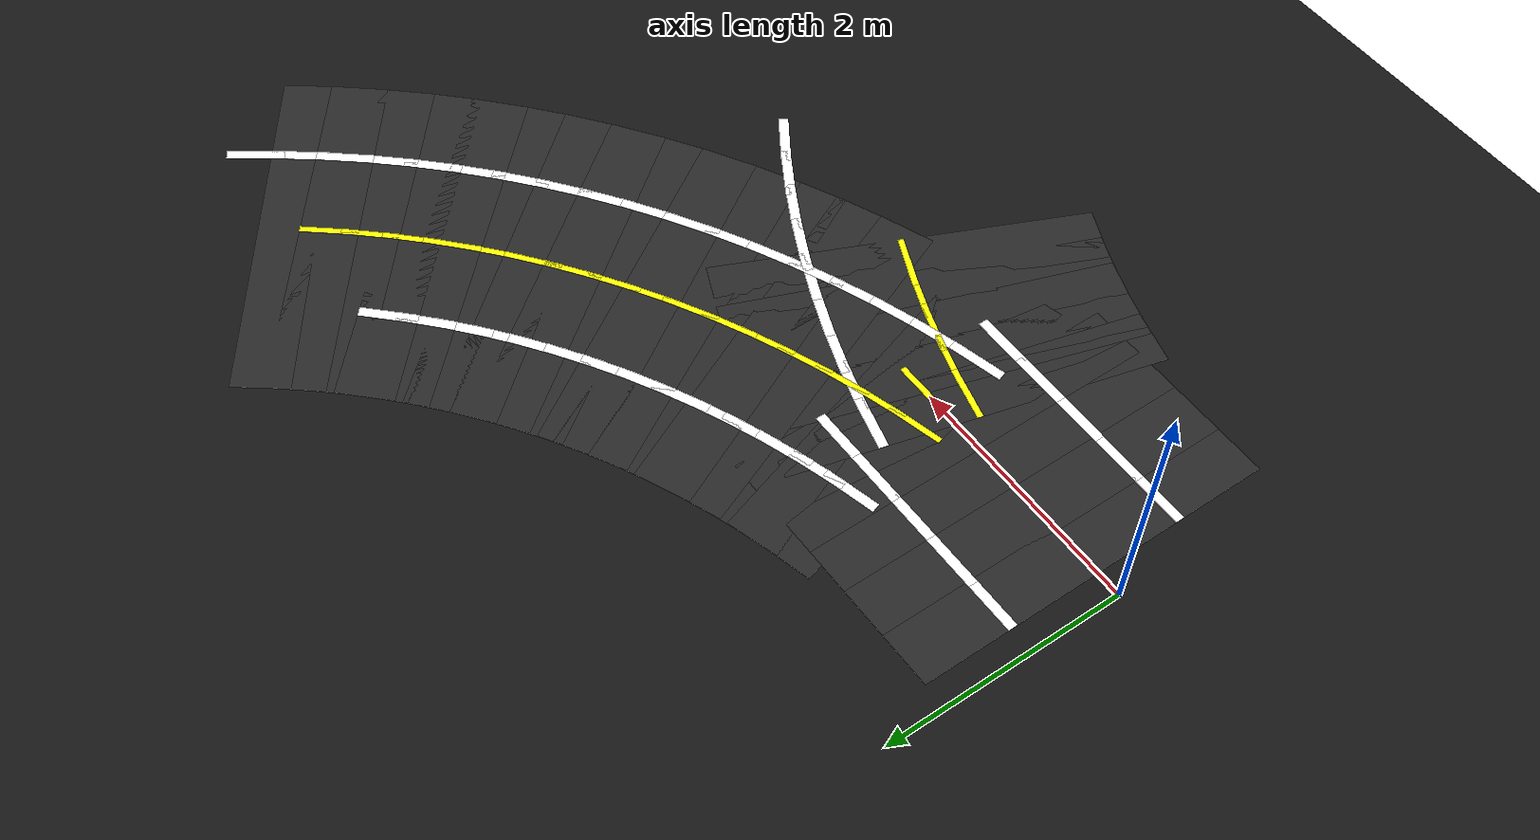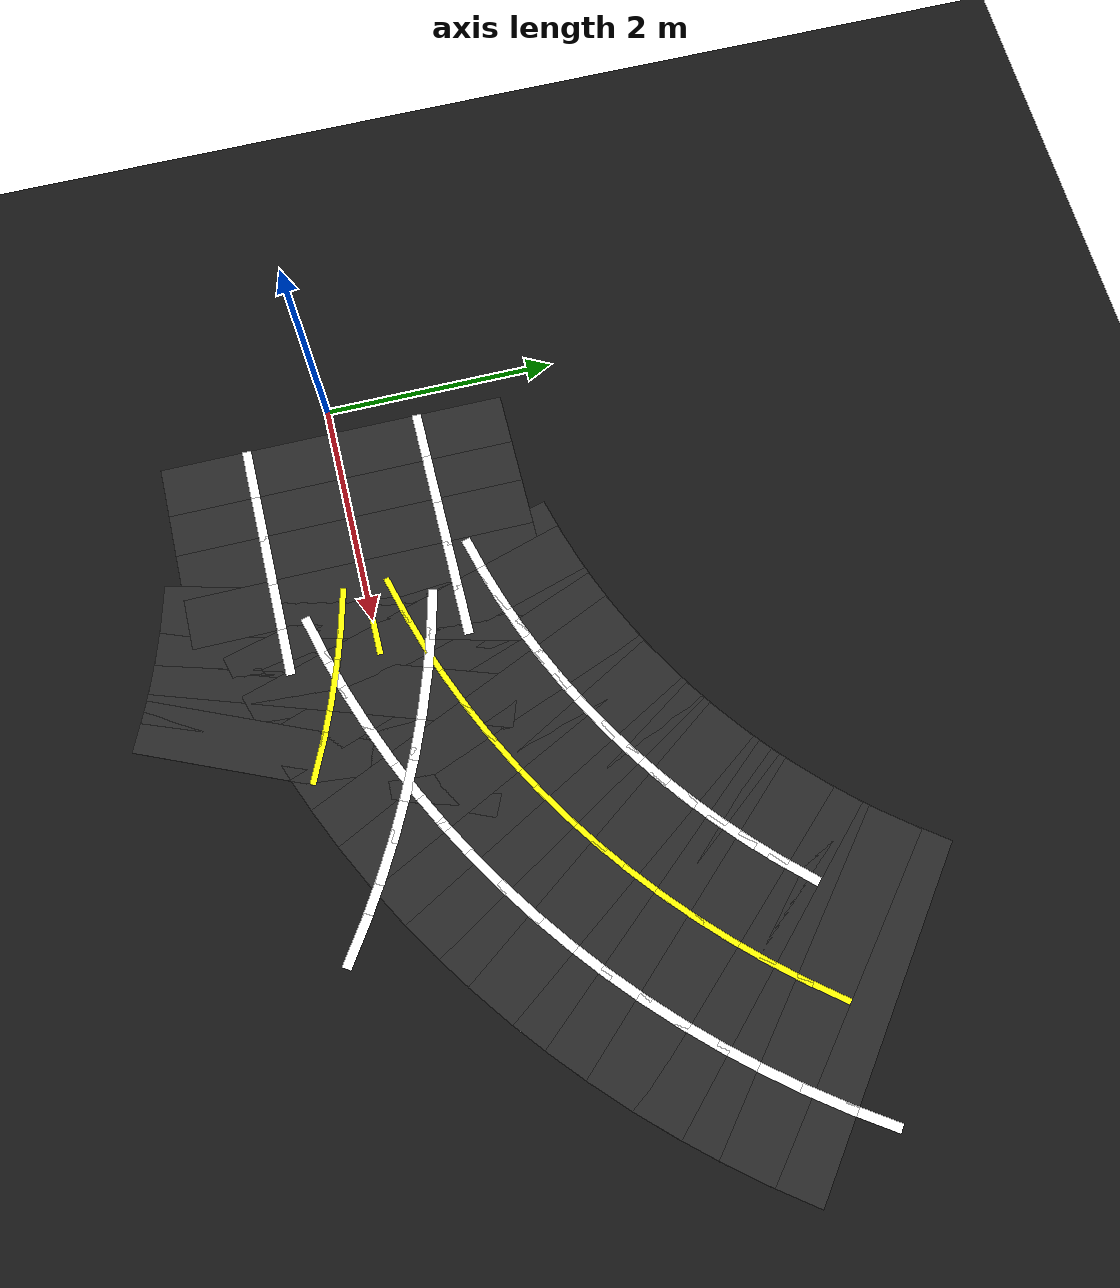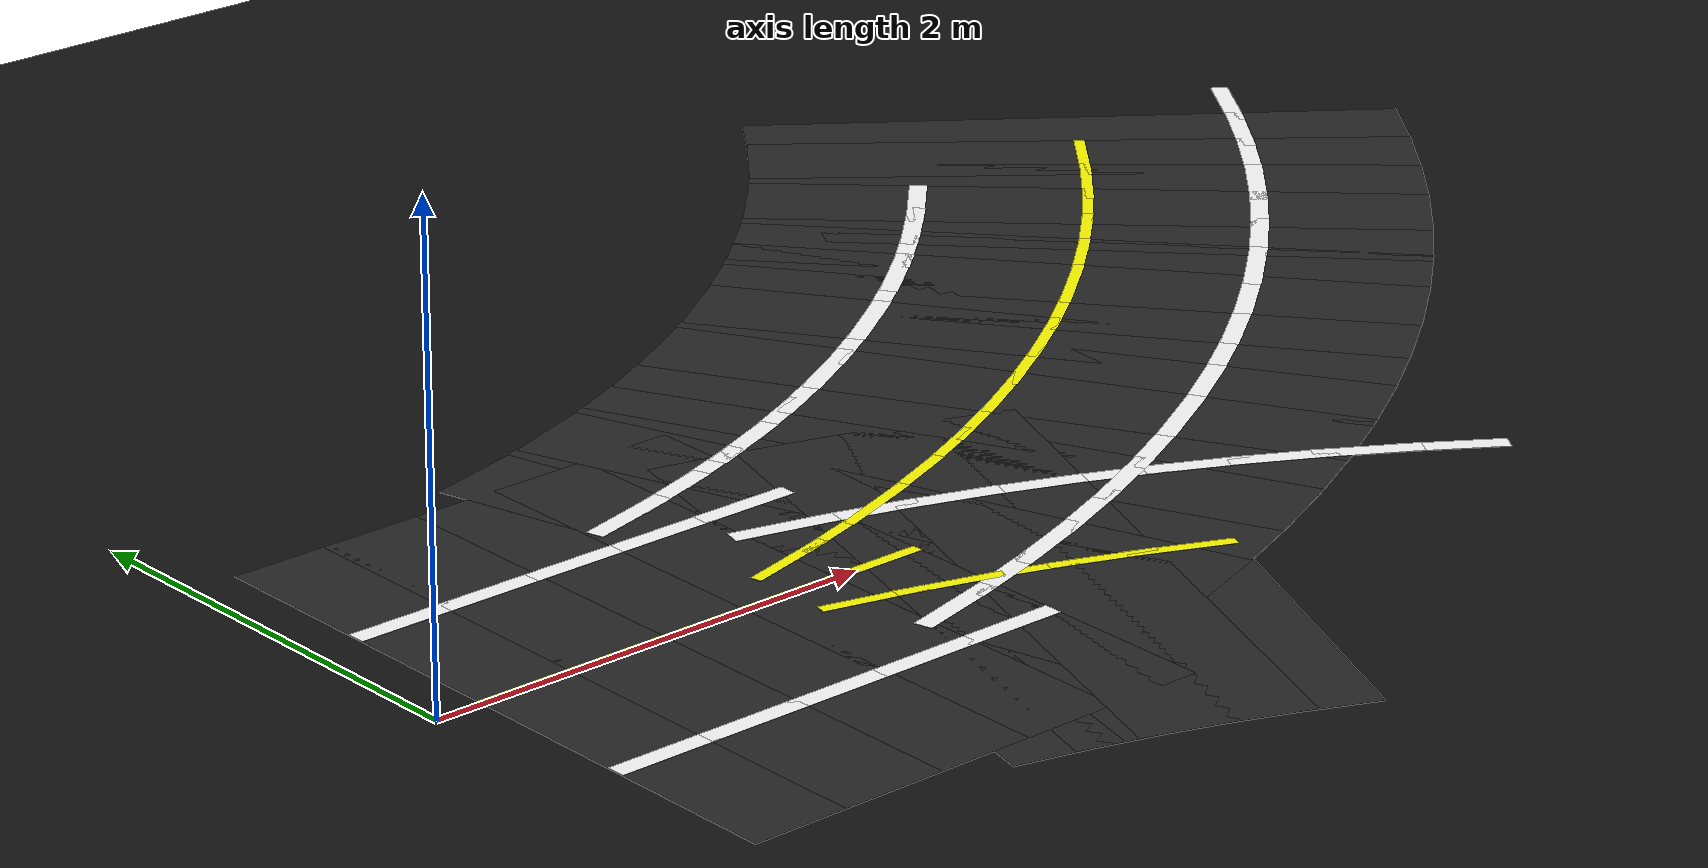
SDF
<sdf version="1.6">
 <world name="figure8_world">
  <model name="ground_plane">
   <static>true</static>
   <link name="link">
    <collision name="collision">
     <geometry><plane><normal>0 0 1</normal><size>100 100</size></plane></geometry>
    </collision>
    <visual name="visual">
     <geometry><plane><normal>0 0 1</normal><size>100 100</size></plane></geometry>
     <material><ambient>0.08 0.08 0.08 1</ambient><diffuse>0.08 0.08 0.08 1</diffuse></material>
    </visual>
   </link>
  </model>
  <model name="seg_00000">
   <static>true</static>
   <pose>1.8774 0.2388 0.0010 0 0 0.2530</pose>
   <link name="link">
    <collision name="collision"><geometry><box><size>0.4500 3.0000 0.002</size></box></geometry></collision>
    <visual name="visual">
     <geometry><box><size>0.4500 3.0000 0.002</size></box></geometry>
     <material><ambient>0.15 0.15 0.15 1</ambient><diffuse>0.15 0.15 0.15 1</diffuse></material>
    </visual>
   </link>
  </model>
  <model name="seg_00001">
   <static>true</static>
   <pose>2.0652 -0.4873 0.0030 0 0 0.2530</pose>
   <link name="link">
    <collision name="collision"><geometry><box><size>0.4500 0.0800 0.002</size></box></geometry></collision>
    <visual name="visual">
     <geometry><box><size>0.4500 0.0800 0.002</size></box></geometry>
     <material><ambient>1 1 1 1</ambient><diffuse>1 1 1 1</diffuse></material>
    </visual>
   </link>
  </model>
  <model name="seg_00002">
   <static>true</static>
   <pose>1.6897 0.9649 0.0030 0 0 0.2530</pose>
   <link name="link">
    <collision name="collision"><geometry><box><size>0.4500 0.0800 0.002</size></box></geometry></collision>
    <visual name="visual">
     <geometry><box><size>0.4500 0.0800 0.002</size></box></geometry>
     <material><ambient>1 1 1 1</ambient><diffuse>1 1 1 1</diffuse></material>
    </visual>
   </link>
  </model>
  <model name="seg_00003">
   <static>true</static>
   <pose>1.8774 0.2388 0.0030 0 0 0.2530</pose>
   <link name="link">
    <collision name="collision"><geometry><box><size>0.4500 0.0500 0.002</size></box></geometry></collision>
    <visual name="visual">
     <geometry><box><size>0.4500 0.0500 0.002</size></box></geometry>
     <material><ambient>1 1 0 1</ambient><diffuse>1 1 0 1</diffuse></material>
    </visual>
   </link>
  </model>
  <model name="seg_00004">
   <static>true</static>
   <pose>2.1819 0.3244 0.0010 0 0 0.2952</pose>
   <link name="link">
    <collision name="collision"><geometry><box><size>0.4500 3.0000 0.002</size></box></geometry></collision>
    <visual name="visual">
     <geometry><box><size>0.4500 3.0000 0.002</size></box></geometry>
     <material><ambient>0.15 0.15 0.15 1</ambient><diffuse>0.15 0.15 0.15 1</diffuse></material>
    </visual>
   </link>
  </model>
  <model name="seg_00005">
   <static>true</static>
   <pose>2.4000 -0.3932 0.0030 0 0 0.2952</pose>
   <link name="link">
    <collision name="collision"><geometry><box><size>0.4500 0.0800 0.002</size></box></geometry></collision>
    <visual name="visual">
     <geometry><box><size>0.4500 0.0800 0.002</size></box></geometry>
     <material><ambient>1 1 1 1</ambient><diffuse>1 1 1 1</diffuse></material>
    </visual>
   </link>
  </model>
  <model name="seg_00006">
   <static>true</static>
   <pose>1.9637 1.0419 0.0030 0 0 0.2952</pose>
   <link name="link">
    <collision name="collision"><geometry><box><size>0.4500 0.0800 0.002</size></box></geometry></collision>
    <visual name="visual">
     <geometry><box><size>0.4500 0.0800 0.002</size></box></geometry>
     <material><ambient>1 1 1 1</ambient><diffuse>1 1 1 1</diffuse></material>
    </visual>
   </link>
  </model>
  <model name="seg_00007">
   <static>true</static>
   <pose>2.1819 0.3244 0.0030 0 0 0.2952</pose>
   <link name="link">
    <collision name="collision"><geometry><box><size>0.4500 0.0500 0.002</size></box></geometry></collision>
    <visual name="visual">
     <geometry><box><size>0.4500 0.0500 0.002</size></box></geometry>
     <material><ambient>1 1 0 1</ambient><diffuse>1 1 0 1</diffuse></material>
    </visual>
   </link>
  </model>
  <model name="seg_00008">
   <static>true</static>
   <pose>2.4824 0.4227 0.0010 0 0 0.3374</pose>
   <link name="link">
    <collision name="collision"><geometry><box><size>0.4500 3.0000 0.002</size></box></geometry></collision>
    <visual name="visual">
     <geometry><box><size>0.4500 3.0000 0.002</size></box></geometry>
     <material><ambient>0.15 0.15 0.15 1</ambient><diffuse>0.15 0.15 0.15 1</diffuse></material>
    </visual>
   </link>
  </model>
  <model name="seg_00009">
   <static>true</static>
   <pose>2.7307 -0.2850 0.0030 0 0 0.3374</pose>
   <link name="link">
    <collision name="collision"><geometry><box><size>0.4500 0.0800 0.002</size></box></geometry></collision>
    <visual name="visual">
     <geometry><box><size>0.4500 0.0800 0.002</size></box></geometry>
     <material><ambient>1 1 1 1</ambient><diffuse>1 1 1 1</diffuse></material>
    </visual>
   </link>
  </model>
  <model name="seg_00010">
   <static>true</static>
   <pose>2.2342 1.1305 0.0030 0 0 0.3374</pose>
   <link name="link">
    <collision name="collision"><geometry><box><size>0.4500 0.0800 0.002</size></box></geometry></collision>
    <visual name="visual">
     <geometry><box><size>0.4500 0.0800 0.002</size></box></geometry>
     <material><ambient>1 1 1 1</ambient><diffuse>1 1 1 1</diffuse></material>
    </visual>
   </link>
  </model>
  <model name="seg_00011">
   <static>true</static>
   <pose>2.4824 0.4227 0.0030 0 0 0.3374</pose>
   <link name="link">
    <collision name="collision"><geometry><box><size>0.4500 0.0500 0.002</size></box></geometry></collision>
    <visual name="visual">
     <geometry><box><size>0.4500 0.0500 0.002</size></box></geometry>
     <material><ambient>1 1 0 1</ambient><diffuse>1 1 0 1</diffuse></material>
    </visual>
   </link>
  </model>
  <model name="seg_00012">
   <static>true</static>
   <pose>2.7786 0.5337 0.0010 0 0 0.3795</pose>
   <link name="link">
    <collision name="collision"><geometry><box><size>0.4500 3.0000 0.002</size></box></geometry></collision>
    <visual name="visual">
     <geometry><box><size>0.4500 3.0000 0.002</size></box></geometry>
     <material><ambient>0.15 0.15 0.15 1</ambient><diffuse>0.15 0.15 0.15 1</diffuse></material>
    </visual>
   </link>
  </model>
  <model name="seg_00013">
   <static>true</static>
   <pose>3.0564 -0.1629 0.0030 0 0 0.3795</pose>
   <link name="link">
    <collision name="collision"><geometry><box><size>0.4500 0.0800 0.002</size></box></geometry></collision>
    <visual name="visual">
     <geometry><box><size>0.4500 0.0800 0.002</size></box></geometry>
     <material><ambient>1 1 1 1</ambient><diffuse>1 1 1 1</diffuse></material>
    </visual>
   </link>
  </model>
  <model name="seg_00014">
   <static>true</static>
   <pose>2.5007 1.2303 0.0030 0 0 0.3795</pose>
   <link name="link">
    <collision name="collision"><geometry><box><size>0.4500 0.0800 0.002</size></box></geometry></collision>
    <visual name="visual">
     <geometry><box><size>0.4500 0.0800 0.002</size></box></geometry>
     <material><ambient>1 1 1 1</ambient><diffuse>1 1 1 1</diffuse></material>
    </visual>
   </link>
  </model>
  <model name="seg_00015">
   <static>true</static>
   <pose>2.7786 0.5337 0.0030 0 0 0.3795</pose>
   <link name="link">
    <collision name="collision"><geometry><box><size>0.4500 0.0500 0.002</size></box></geometry></collision>
    <visual name="visual">
     <geometry><box><size>0.4500 0.0500 0.002</size></box></geometry>
     <material><ambient>1 1 0 1</ambient><diffuse>1 1 0 1</diffuse></material>
    </visual>
   </link>
  </model>
  <model name="seg_00016">
   <static>true</static>
   <pose>3.0698 0.6570 0.0010 0 0 0.4217</pose>
   <link name="link">
    <collision name="collision"><geometry><box><size>0.4500 3.0000 0.002</size></box></geometry></collision>
    <visual name="visual">
     <geometry><box><size>0.4500 3.0000 0.002</size></box></geometry>
     <material><ambient>0.15 0.15 0.15 1</ambient><diffuse>0.15 0.15 0.15 1</diffuse></material>
    </visual>
   </link>
  </model>
  <model name="seg_00017">
   <static>true</static>
   <pose>3.3768 -0.0273 0.0030 0 0 0.4217</pose>
   <link name="link">
    <collision name="collision"><geometry><box><size>0.4500 0.0800 0.002</size></box></geometry></collision>
    <visual name="visual">
     <geometry><box><size>0.4500 0.0800 0.002</size></box></geometry>
     <material><ambient>1 1 1 1</ambient><diffuse>1 1 1 1</diffuse></material>
    </visual>
   </link>
  </model>
  <model name="seg_00018">
   <static>true</static>
   <pose>2.7628 1.3413 0.0030 0 0 0.4217</pose>
   <link name="link">
    <collision name="collision"><geometry><box><size>0.4500 0.0800 0.002</size></box></geometry></collision>
    <visual name="visual">
     <geometry><box><size>0.4500 0.0800 0.002</size></box></geometry>
     <material><ambient>1 1 1 1</ambient><diffuse>1 1 1 1</diffuse></material>
    </visual>
   </link>
  </model>
  <model name="seg_00019">
   <static>true</static>
   <pose>3.0698 0.6570 0.0030 0 0 0.4217</pose>
   <link name="link">
    <collision name="collision"><geometry><box><size>0.4500 0.0500 0.002</size></box></geometry></collision>
    <visual name="visual">
     <geometry><box><size>0.4500 0.0500 0.002</size></box></geometry>
     <material><ambient>1 1 0 1</ambient><diffuse>1 1 0 1</diffuse></material>
    </visual>
   </link>
  </model>
  <model name="seg_00020">
   <static>true</static>
   <pose>3.3555 0.7925 0.0010 0 0 0.4639</pose>
   <link name="link">
    <collision name="collision"><geometry><box><size>0.4500 3.0000 0.002</size></box></geometry></collision>
    <visual name="visual">
     <geometry><box><size>0.4500 3.0000 0.002</size></box></geometry>
     <material><ambient>0.15 0.15 0.15 1</ambient><diffuse>0.15 0.15 0.15 1</diffuse></material>
    </visual>
   </link>
  </model>
  <model name="seg_00021">
   <static>true</static>
   <pose>3.6911 0.1218 0.0030 0 0 0.4639</pose>
   <link name="link">
    <collision name="collision"><geometry><box><size>0.4500 0.0800 0.002</size></box></geometry></collision>
    <visual name="visual">
     <geometry><box><size>0.4500 0.0800 0.002</size></box></geometry>
     <material><ambient>1 1 1 1</ambient><diffuse>1 1 1 1</diffuse></material>
    </visual>
   </link>
  </model>
  <model name="seg_00022">
   <static>true</static>
   <pose>3.0200 1.4633 0.0030 0 0 0.4639</pose>
   <link name="link">
    <collision name="collision"><geometry><box><size>0.4500 0.0800 0.002</size></box></geometry></collision>
    <visual name="visual">
     <geometry><box><size>0.4500 0.0800 0.002</size></box></geometry>
     <material><ambient>1 1 1 1</ambient><diffuse>1 1 1 1</diffuse></material>
    </visual>
   </link>
  </model>
  <model name="seg_00023">
   <static>true</static>
   <pose>3.3555 0.7925 0.0030 0 0 0.4639</pose>
   <link name="link">
    <collision name="collision"><geometry><box><size>0.4500 0.0500 0.002</size></box></geometry></collision>
    <visual name="visual">
     <geometry><box><size>0.4500 0.0500 0.002</size></box></geometry>
     <material><ambient>1 1 0 1</ambient><diffuse>1 1 0 1</diffuse></material>
    </visual>
   </link>
  </model>
  <model name="seg_00024">
   <static>true</static>
   <pose>3.6353 0.9399 0.0010 0 0 0.5060</pose>
   <link name="link">
    <collision name="collision"><geometry><box><size>0.4500 3.0000 0.002</size></box></geometry></collision>
    <visual name="visual">
     <geometry><box><size>0.4500 3.0000 0.002</size></box></geometry>
     <material><ambient>0.15 0.15 0.15 1</ambient><diffuse>0.15 0.15 0.15 1</diffuse></material>
    </visual>
   </link>
  </model>
  <model name="seg_00025">
   <static>true</static>
   <pose>3.9988 0.2839 0.0030 0 0 0.5060</pose>
   <link name="link">
    <collision name="collision"><geometry><box><size>0.4500 0.0800 0.002</size></box></geometry></collision>
    <visual name="visual">
     <geometry><box><size>0.4500 0.0800 0.002</size></box></geometry>
     <material><ambient>1 1 1 1</ambient><diffuse>1 1 1 1</diffuse></material>
    </visual>
   </link>
  </model>
  <model name="seg_00026">
   <static>true</static>
   <pose>3.2718 1.5959 0.0030 0 0 0.5060</pose>
   <link name="link">
    <collision name="collision"><geometry><box><size>0.4500 0.0800 0.002</size></box></geometry></collision>
    <visual name="visual">
     <geometry><box><size>0.4500 0.0800 0.002</size></box></geometry>
     <material><ambient>1 1 1 1</ambient><diffuse>1 1 1 1</diffuse></material>
    </visual>
   </link>
  </model>
  <model name="seg_00027">
   <static>true</static>
   <pose>3.6353 0.9399 0.0030 0 0 0.5060</pose>
   <link name="link">
    <collision name="collision"><geometry><box><size>0.4500 0.0500 0.002</size></box></geometry></collision>
    <visual name="visual">
     <geometry><box><size>0.4500 0.0500 0.002</size></box></geometry>
     <material><ambient>1 1 0 1</ambient><diffuse>1 1 0 1</diffuse></material>
    </visual>
   </link>
  </model>
  <model name="seg_00028">
   <static>true</static>
   <pose>3.9086 1.0990 0.0010 0 0 0.5482</pose>
   <link name="link">
    <collision name="collision"><geometry><box><size>0.4500 3.0000 0.002</size></box></geometry></collision>
    <visual name="visual">
     <geometry><box><size>0.4500 3.0000 0.002</size></box></geometry>
     <material><ambient>0.15 0.15 0.15 1</ambient><diffuse>0.15 0.15 0.15 1</diffuse></material>
    </visual>
   </link>
  </model>
  <model name="seg_00029">
   <static>true</static>
   <pose>4.2995 0.4589 0.0030 0 0 0.5482</pose>
   <link name="link">
    <collision name="collision"><geometry><box><size>0.4500 0.0800 0.002</size></box></geometry></collision>
    <visual name="visual">
     <geometry><box><size>0.4500 0.0800 0.002</size></box></geometry>
     <material><ambient>1 1 1 1</ambient><diffuse>1 1 1 1</diffuse></material>
    </visual>
   </link>
  </model>
  <model name="seg_00030">
   <static>true</static>
   <pose>3.5178 1.7391 0.0030 0 0 0.5482</pose>
   <link name="link">
    <collision name="collision"><geometry><box><size>0.4500 0.0800 0.002</size></box></geometry></collision>
    <visual name="visual">
     <geometry><box><size>0.4500 0.0800 0.002</size></box></geometry>
     <material><ambient>1 1 1 1</ambient><diffuse>1 1 1 1</diffuse></material>
    </visual>
   </link>
  </model>
  <model name="seg_00031">
   <static>true</static>
   <pose>3.9086 1.0990 0.0030 0 0 0.5482</pose>
   <link name="link">
    <collision name="collision"><geometry><box><size>0.4500 0.0500 0.002</size></box></geometry></collision>
    <visual name="visual">
     <geometry><box><size>0.4500 0.0500 0.002</size></box></geometry>
     <material><ambient>1 1 0 1</ambient><diffuse>1 1 0 1</diffuse></material>
    </visual>
   </link>
  </model>
  <model name="seg_00032">
   <static>true</static>
   <pose>4.1750 1.2695 0.0010 0 0 0.5904</pose>
   <link name="link">
    <collision name="collision"><geometry><box><size>0.4500 3.0000 0.002</size></box></geometry></collision>
    <visual name="visual">
     <geometry><box><size>0.4500 3.0000 0.002</size></box></geometry>
     <material><ambient>0.15 0.15 0.15 1</ambient><diffuse>0.15 0.15 0.15 1</diffuse></material>
    </visual>
   </link>
  </model>
  <model name="seg_00033">
   <static>true</static>
   <pose>4.5925 0.6464 0.0030 0 0 0.5904</pose>
   <link name="link">
    <collision name="collision"><geometry><box><size>0.4500 0.0800 0.002</size></box></geometry></collision>
    <visual name="visual">
     <geometry><box><size>0.4500 0.0800 0.002</size></box></geometry>
     <material><ambient>1 1 1 1</ambient><diffuse>1 1 1 1</diffuse></material>
    </visual>
   </link>
  </model>
  <model name="seg_00034">
   <static>true</static>
   <pose>3.7575 1.8925 0.0030 0 0 0.5904</pose>
   <link name="link">
    <collision name="collision"><geometry><box><size>0.4500 0.0800 0.002</size></box></geometry></collision>
    <visual name="visual">
     <geometry><box><size>0.4500 0.0800 0.002</size></box></geometry>
     <material><ambient>1 1 1 1</ambient><diffuse>1 1 1 1</diffuse></material>
    </visual>
   </link>
  </model>
  <model name="seg_00035">
   <static>true</static>
   <pose>4.1750 1.2695 0.0030 0 0 0.5904</pose>
   <link name="link">
    <collision name="collision"><geometry><box><size>0.4500 0.0500 0.002</size></box></geometry></collision>
    <visual name="visual">
     <geometry><box><size>0.4500 0.0500 0.002</size></box></geometry>
     <material><ambient>1 1 0 1</ambient><diffuse>1 1 0 1</diffuse></material>
    </visual>
   </link>
  </model>
  <model name="seg_00036">
   <static>true</static>
   <pose>4.4339 1.4510 0.0010 0 0 0.6325</pose>
   <link name="link">
    <collision name="collision"><geometry><box><size>0.4500 3.0000 0.002</size></box></geometry></collision>
    <visual name="visual">
     <geometry><box><size>0.4500 3.0000 0.002</size></box></geometry>
     <material><ambient>0.15 0.15 0.15 1</ambient><diffuse>0.15 0.15 0.15 1</diffuse></material>
    </visual>
   </link>
  </model>
  <model name="seg_00037">
   <static>true</static>
   <pose>4.8773 0.8461 0.0030 0 0 0.6325</pose>
   <link name="link">
    <collision name="collision"><geometry><box><size>0.4500 0.0800 0.002</size></box></geometry></collision>
    <visual name="visual">
     <geometry><box><size>0.4500 0.0800 0.002</size></box></geometry>
     <material><ambient>1 1 1 1</ambient><diffuse>1 1 1 1</diffuse></material>
    </visual>
   </link>
  </model>
  <model name="seg_00038">
   <static>true</static>
   <pose>3.9905 2.0559 0.0030 0 0 0.6325</pose>
   <link name="link">
    <collision name="collision"><geometry><box><size>0.4500 0.0800 0.002</size></box></geometry></collision>
    <visual name="visual">
     <geometry><box><size>0.4500 0.0800 0.002</size></box></geometry>
     <material><ambient>1 1 1 1</ambient><diffuse>1 1 1 1</diffuse></material>
    </visual>
   </link>
  </model>
  <model name="seg_00039">
   <static>true</static>
   <pose>4.4339 1.4510 0.0030 0 0 0.6325</pose>
   <link name="link">
    <collision name="collision"><geometry><box><size>0.4500 0.0500 0.002</size></box></geometry></collision>
    <visual name="visual">
     <geometry><box><size>0.4500 0.0500 0.002</size></box></geometry>
     <material><ambient>1 1 0 1</ambient><diffuse>1 1 0 1</diffuse></material>
    </visual>
   </link>
  </model>
  <model name="seg_00040">
   <static>true</static>
   <pose>4.6850 1.6433 0.0010 0 0 0.6747</pose>
   <link name="link">
    <collision name="collision"><geometry><box><size>0.4500 3.0000 0.002</size></box></geometry></collision>
    <visual name="visual">
     <geometry><box><size>0.4500 3.0000 0.002</size></box></geometry>
     <material><ambient>0.15 0.15 0.15 1</ambient><diffuse>0.15 0.15 0.15 1</diffuse></material>
    </visual>
   </link>
  </model>
  <model name="seg_00041">
   <static>true</static>
   <pose>5.1535 1.0576 0.0030 0 0 0.6747</pose>
   <link name="link">
    <collision name="collision"><geometry><box><size>0.4500 0.0800 0.002</size></box></geometry></collision>
    <visual name="visual">
     <geometry><box><size>0.4500 0.0800 0.002</size></box></geometry>
     <material><ambient>1 1 1 1</ambient><diffuse>1 1 1 1</diffuse></material>
    </visual>
   </link>
  </model>
  <model name="seg_00042">
   <static>true</static>
   <pose>4.2165 2.2290 0.0030 0 0 0.6747</pose>
   <link name="link">
    <collision name="collision"><geometry><box><size>0.4500 0.0800 0.002</size></box></geometry></collision>
    <visual name="visual">
     <geometry><box><size>0.4500 0.0800 0.002</size></box></geometry>
     <material><ambient>1 1 1 1</ambient><diffuse>1 1 1 1</diffuse></material>
    </visual>
   </link>
  </model>
  <model name="seg_00043">
   <static>true</static>
   <pose>4.6850 1.6433 0.0030 0 0 0.6747</pose>
   <link name="link">
    <collision name="collision"><geometry><box><size>0.4500 0.0500 0.002</size></box></geometry></collision>
    <visual name="visual">
     <geometry><box><size>0.4500 0.0500 0.002</size></box></geometry>
     <material><ambient>1 1 0 1</ambient><diffuse>1 1 0 1</diffuse></material>
    </visual>
   </link>
  </model>
  <model name="seg_00044">
   <static>true</static>
   <pose>4.9277 1.8460 0.0010 0 0 0.7169</pose>
   <link name="link">
    <collision name="collision"><geometry><box><size>0.4500 3.0000 0.002</size></box></geometry></collision>
    <visual name="visual">
     <geometry><box><size>0.4500 3.0000 0.002</size></box></geometry>
     <material><ambient>0.15 0.15 0.15 1</ambient><diffuse>0.15 0.15 0.15 1</diffuse></material>
    </visual>
   </link>
  </model>
  <model name="seg_00045">
   <static>true</static>
   <pose>5.4205 1.2806 0.0030 0 0 0.7169</pose>
   <link name="link">
    <collision name="collision"><geometry><box><size>0.4500 0.0800 0.002</size></box></geometry></collision>
    <visual name="visual">
     <geometry><box><size>0.4500 0.0800 0.002</size></box></geometry>
     <material><ambient>1 1 1 1</ambient><diffuse>1 1 1 1</diffuse></material>
    </visual>
   </link>
  </model>
  <model name="seg_00046">
   <static>true</static>
   <pose>4.4350 2.4114 0.0030 0 0 0.7169</pose>
   <link name="link">
    <collision name="collision"><geometry><box><size>0.4500 0.0800 0.002</size></box></geometry></collision>
    <visual name="visual">
     <geometry><box><size>0.4500 0.0800 0.002</size></box></geometry>
     <material><ambient>1 1 1 1</ambient><diffuse>1 1 1 1</diffuse></material>
    </visual>
   </link>
  </model>
  <model name="seg_00047">
   <static>true</static>
   <pose>4.9277 1.8460 0.0030 0 0 0.7169</pose>
   <link name="link">
    <collision name="collision"><geometry><box><size>0.4500 0.0500 0.002</size></box></geometry></collision>
    <visual name="visual">
     <geometry><box><size>0.4500 0.0500 0.002</size></box></geometry>
     <material><ambient>1 1 0 1</ambient><diffuse>1 1 0 1</diffuse></material>
    </visual>
   </link>
  </model>
  <model name="seg_00048">
   <static>true</static>
   <pose>5.1617 2.0588 0.0010 0 0 0.7590</pose>
   <link name="link">
    <collision name="collision"><geometry><box><size>0.4500 3.0000 0.002</size></box></geometry></collision>
    <visual name="visual">
     <geometry><box><size>0.4500 3.0000 0.002</size></box></geometry>
     <material><ambient>0.15 0.15 0.15 1</ambient><diffuse>0.15 0.15 0.15 1</diffuse></material>
    </visual>
   </link>
  </model>
  <model name="seg_00049">
   <static>true</static>
   <pose>5.6779 1.5147 0.0030 0 0 0.7590</pose>
   <link name="link">
    <collision name="collision"><geometry><box><size>0.4500 0.0800 0.002</size></box></geometry></collision>
    <visual name="visual">
     <geometry><box><size>0.4500 0.0800 0.002</size></box></geometry>
     <material><ambient>1 1 1 1</ambient><diffuse>1 1 1 1</diffuse></material>
    </visual>
   </link>
  </model>
  <model name="seg_00050">
   <static>true</static>
   <pose>4.6455 2.6029 0.0030 0 0 0.7590</pose>
   <link name="link">
    <collision name="collision"><geometry><box><size>0.4500 0.0800 0.002</size></box></geometry></collision>
    <visual name="visual">
     <geometry><box><size>0.4500 0.0800 0.002</size></box></geometry>
     <material><ambient>1 1 1 1</ambient><diffuse>1 1 1 1</diffuse></material>
    </visual>
   </link>
  </model>
  <model name="seg_00051">
   <static>true</static>
   <pose>5.1617 2.0588 0.0030 0 0 0.7590</pose>
   <link name="link">
    <collision name="collision"><geometry><box><size>0.4500 0.0500 0.002</size></box></geometry></collision>
    <visual name="visual">
     <geometry><box><size>0.4500 0.0500 0.002</size></box></geometry>
     <material><ambient>1 1 0 1</ambient><diffuse>1 1 0 1</diffuse></material>
    </visual>
   </link>
  </model>
  <model name="seg_00052">
   <static>true</static>
   <pose>5.3865 2.2812 0.0010 0 0 0.8012</pose>
   <link name="link">
    <collision name="collision"><geometry><box><size>0.4500 3.0000 0.002</size></box></geometry></collision>
    <visual name="visual">
     <geometry><box><size>0.4500 3.0000 0.002</size></box></geometry>
     <material><ambient>0.15 0.15 0.15 1</ambient><diffuse>0.15 0.15 0.15 1</diffuse></material>
    </visual>
   </link>
  </model>
  <model name="seg_00053">
   <static>true</static>
   <pose>5.9251 1.7593 0.0030 0 0 0.8012</pose>
   <link name="link">
    <collision name="collision"><geometry><box><size>0.4500 0.0800 0.002</size></box></geometry></collision>
    <visual name="visual">
     <geometry><box><size>0.4500 0.0800 0.002</size></box></geometry>
     <material><ambient>1 1 1 1</ambient><diffuse>1 1 1 1</diffuse></material>
    </visual>
   </link>
  </model>
  <model name="seg_00054">
   <static>true</static>
   <pose>4.8478 2.8031 0.0030 0 0 0.8012</pose>
   <link name="link">
    <collision name="collision"><geometry><box><size>0.4500 0.0800 0.002</size></box></geometry></collision>
    <visual name="visual">
     <geometry><box><size>0.4500 0.0800 0.002</size></box></geometry>
     <material><ambient>1 1 1 1</ambient><diffuse>1 1 1 1</diffuse></material>
    </visual>
   </link>
  </model>
  <model name="seg_00055">
   <static>true</static>
   <pose>5.3865 2.2812 0.0030 0 0 0.8012</pose>
   <link name="link">
    <collision name="collision"><geometry><box><size>0.4500 0.0500 0.002</size></box></geometry></collision>
    <visual name="visual">
     <geometry><box><size>0.4500 0.0500 0.002</size></box></geometry>
     <material><ambient>1 1 0 1</ambient><diffuse>1 1 0 1</diffuse></material>
    </visual>
   </link>
  </model>
  <model name="seg_00056">
   <static>true</static>
   <pose>5.6017 2.5129 0.0010 0 0 0.8434</pose>
   <link name="link">
    <collision name="collision"><geometry><box><size>0.4500 3.0000 0.002</size></box></geometry></collision>
    <visual name="visual">
     <geometry><box><size>0.4500 3.0000 0.002</size></box></geometry>
     <material><ambient>0.15 0.15 0.15 1</ambient><diffuse>0.15 0.15 0.15 1</diffuse></material>
    </visual>
   </link>
  </model>
  <model name="seg_00057">
   <static>true</static>
   <pose>6.1619 2.0142 0.0030 0 0 0.8434</pose>
   <link name="link">
    <collision name="collision"><geometry><box><size>0.4500 0.0800 0.002</size></box></geometry></collision>
    <visual name="visual">
     <geometry><box><size>0.4500 0.0800 0.002</size></box></geometry>
     <material><ambient>1 1 1 1</ambient><diffuse>1 1 1 1</diffuse></material>
    </visual>
   </link>
  </model>
  <model name="seg_00059">
   <static>true</static>
   <pose>5.6017 2.5129 0.0030 0 0 0.8434</pose>
   <link name="link">
    <collision name="collision"><geometry><box><size>0.4500 0.0500 0.002</size></box></geometry></collision>
    <visual name="visual">
     <geometry><box><size>0.4500 0.0500 0.002</size></box></geometry>
     <material><ambient>1 1 0 1</ambient><diffuse>1 1 0 1</diffuse></material>
    </visual>
   </link>
  </model>
  <model name="seg_00060">
   <static>true</static>
   <pose>5.8070 2.7535 0.0010 0 0 0.8855</pose>
   <link name="link">
    <collision name="collision"><geometry><box><size>0.4500 3.0000 0.002</size></box></geometry></collision>
    <visual name="visual">
     <geometry><box><size>0.4500 3.0000 0.002</size></box></geometry>
     <material><ambient>0.15 0.15 0.15 1</ambient><diffuse>0.15 0.15 0.15 1</diffuse></material>
    </visual>
   </link>
  </model>
  <model name="seg_00061">
   <static>true</static>
   <pose>6.3877 2.2789 0.0030 0 0 0.8855</pose>
   <link name="link">
    <collision name="collision"><geometry><box><size>0.4500 0.0800 0.002</size></box></geometry></collision>
    <visual name="visual">
     <geometry><box><size>0.4500 0.0800 0.002</size></box></geometry>
     <material><ambient>1 1 1 1</ambient><diffuse>1 1 1 1</diffuse></material>
    </visual>
   </link>
  </model>
  <model name="seg_00063">
   <static>true</static>
   <pose>5.8070 2.7535 0.0030 0 0 0.8855</pose>
   <link name="link">
    <collision name="collision"><geometry><box><size>0.4500 0.0500 0.002</size></box></geometry></collision>
    <visual name="visual">
     <geometry><box><size>0.4500 0.0500 0.002</size></box></geometry>
     <material><ambient>1 1 0 1</ambient><diffuse>1 1 0 1</diffuse></material>
    </visual>
   </link>
  </model>
  <model name="seg_00064">
   <static>true</static>
   <pose>6.0019 3.0025 0.0010 0 0 0.9277</pose>
   <link name="link">
    <collision name="collision"><geometry><box><size>0.4500 3.0000 0.002</size></box></geometry></collision>
    <visual name="visual">
     <geometry><box><size>0.4500 3.0000 0.002</size></box></geometry>
     <material><ambient>0.15 0.15 0.15 1</ambient><diffuse>0.15 0.15 0.15 1</diffuse></material>
    </visual>
   </link>
  </model>
  <model name="seg_00065">
   <static>true</static>
   <pose>6.6021 2.5528 0.0030 0 0 0.9277</pose>
   <link name="link">
    <collision name="collision"><geometry><box><size>0.4500 0.0800 0.002</size></box></geometry></collision>
    <visual name="visual">
     <geometry><box><size>0.4500 0.0800 0.002</size></box></geometry>
     <material><ambient>1 1 1 1</ambient><diffuse>1 1 1 1</diffuse></material>
    </visual>
   </link>
  </model>
  <model name="seg_00069">
   <static>true</static>
   <pose>6.8048 2.8355 0.0030 0 0 0.9699</pose>
   <link name="link">
    <collision name="collision"><geometry><box><size>0.4500 0.0800 0.002</size></box></geometry></collision>
    <visual name="visual">
     <geometry><box><size>0.4500 0.0800 0.002</size></box></geometry>
     <material><ambient>1 1 1 1</ambient><diffuse>1 1 1 1</diffuse></material>
    </visual>
   </link>
  </model>
  <model name="seg_00552">
   <static>true</static>
   <pose>1.8774 -0.2388 0.0010 0 0 -0.2530</pose>
   <link name="link">
    <collision name="collision"><geometry><box><size>0.4500 3.0000 0.002</size></box></geometry></collision>
    <visual name="visual">
     <geometry><box><size>0.4500 3.0000 0.002</size></box></geometry>
     <material><ambient>0.15 0.15 0.15 1</ambient><diffuse>0.15 0.15 0.15 1</diffuse></material>
    </visual>
   </link>
  </model>
  <model name="seg_00553">
   <static>true</static>
   <pose>2.0652 0.4873 0.0030 0 0 -0.2530</pose>
   <link name="link">
    <collision name="collision"><geometry><box><size>0.4500 0.0800 0.002</size></box></geometry></collision>
    <visual name="visual">
     <geometry><box><size>0.4500 0.0800 0.002</size></box></geometry>
     <material><ambient>1 1 1 1</ambient><diffuse>1 1 1 1</diffuse></material>
    </visual>
   </link>
  </model>
  <model name="seg_00555">
   <static>true</static>
   <pose>1.8774 -0.2388 0.0030 0 0 -0.2530</pose>
   <link name="link">
    <collision name="collision"><geometry><box><size>0.4500 0.0500 0.002</size></box></geometry></collision>
    <visual name="visual">
     <geometry><box><size>0.4500 0.0500 0.002</size></box></geometry>
     <material><ambient>1 1 0 1</ambient><diffuse>1 1 0 1</diffuse></material>
    </visual>
   </link>
  </model>
  <model name="seg_00556">
   <static>true</static>
   <pose>2.1819 -0.3244 0.0010 0 0 -0.2952</pose>
   <link name="link">
    <collision name="collision"><geometry><box><size>0.4500 3.0000 0.002</size></box></geometry></collision>
    <visual name="visual">
     <geometry><box><size>0.4500 3.0000 0.002</size></box></geometry>
     <material><ambient>0.15 0.15 0.15 1</ambient><diffuse>0.15 0.15 0.15 1</diffuse></material>
    </visual>
   </link>
  </model>
  <model name="seg_00557">
   <static>true</static>
   <pose>2.4000 0.3932 0.0030 0 0 -0.2952</pose>
   <link name="link">
    <collision name="collision"><geometry><box><size>0.4500 0.0800 0.002</size></box></geometry></collision>
    <visual name="visual">
     <geometry><box><size>0.4500 0.0800 0.002</size></box></geometry>
     <material><ambient>1 1 1 1</ambient><diffuse>1 1 1 1</diffuse></material>
    </visual>
   </link>
  </model>
  <model name="seg_00559">
   <static>true</static>
   <pose>2.1819 -0.3244 0.0030 0 0 -0.2952</pose>
   <link name="link">
    <collision name="collision"><geometry><box><size>0.4500 0.0500 0.002</size></box></geometry></collision>
    <visual name="visual">
     <geometry><box><size>0.4500 0.0500 0.002</size></box></geometry>
     <material><ambient>1 1 0 1</ambient><diffuse>1 1 0 1</diffuse></material>
    </visual>
   </link>
  </model>
  <model name="seg_00560">
   <static>true</static>
   <pose>2.4824 -0.4227 0.0010 0 0 -0.3374</pose>
   <link name="link">
    <collision name="collision"><geometry><box><size>0.4500 3.0000 0.002</size></box></geometry></collision>
    <visual name="visual">
     <geometry><box><size>0.4500 3.0000 0.002</size></box></geometry>
     <material><ambient>0.15 0.15 0.15 1</ambient><diffuse>0.15 0.15 0.15 1</diffuse></material>
    </visual>
   </link>
  </model>
  <model name="seg_00561">
   <static>true</static>
   <pose>2.7307 0.2850 0.0030 0 0 -0.3374</pose>
   <link name="link">
    <collision name="collision"><geometry><box><size>0.4500 0.0800 0.002</size></box></geometry></collision>
    <visual name="visual">
     <geometry><box><size>0.4500 0.0800 0.002</size></box></geometry>
     <material><ambient>1 1 1 1</ambient><diffuse>1 1 1 1</diffuse></material>
    </visual>
   </link>
  </model>
  <model name="seg_00563">
   <static>true</static>
   <pose>2.4824 -0.4227 0.0030 0 0 -0.3374</pose>
   <link name="link">
    <collision name="collision"><geometry><box><size>0.4500 0.0500 0.002</size></box></geometry></collision>
    <visual name="visual">
     <geometry><box><size>0.4500 0.0500 0.002</size></box></geometry>
     <material><ambient>1 1 0 1</ambient><diffuse>1 1 0 1</diffuse></material>
    </visual>
   </link>
  </model>
  <model name="seg_00564">
   <static>true</static>
   <pose>2.7786 -0.5337 0.0010 0 0 -0.3795</pose>
   <link name="link">
    <collision name="collision"><geometry><box><size>0.4500 3.0000 0.002</size></box></geometry></collision>
    <visual name="visual">
     <geometry><box><size>0.4500 3.0000 0.002</size></box></geometry>
     <material><ambient>0.15 0.15 0.15 1</ambient><diffuse>0.15 0.15 0.15 1</diffuse></material>
    </visual>
   </link>
  </model>
  <model name="seg_00565">
   <static>true</static>
   <pose>3.0564 0.1629 0.0030 0 0 -0.3795</pose>
   <link name="link">
    <collision name="collision"><geometry><box><size>0.4500 0.0800 0.002</size></box></geometry></collision>
    <visual name="visual">
     <geometry><box><size>0.4500 0.0800 0.002</size></box></geometry>
     <material><ambient>1 1 1 1</ambient><diffuse>1 1 1 1</diffuse></material>
    </visual>
   </link>
  </model>
  <model name="seg_00567">
   <static>true</static>
   <pose>2.7786 -0.5337 0.0030 0 0 -0.3795</pose>
   <link name="link">
    <collision name="collision"><geometry><box><size>0.4500 0.0500 0.002</size></box></geometry></collision>
    <visual name="visual">
     <geometry><box><size>0.4500 0.0500 0.002</size></box></geometry>
     <material><ambient>1 1 0 1</ambient><diffuse>1 1 0 1</diffuse></material>
    </visual>
   </link>
  </model>
  <model name="seg_00568">
   <static>true</static>
   <pose>3.0698 -0.6570 0.0010 0 0 -0.4217</pose>
   <link name="link">
    <collision name="collision"><geometry><box><size>0.4500 3.0000 0.002</size></box></geometry></collision>
    <visual name="visual">
     <geometry><box><size>0.4500 3.0000 0.002</size></box></geometry>
     <material><ambient>0.15 0.15 0.15 1</ambient><diffuse>0.15 0.15 0.15 1</diffuse></material>
    </visual>
   </link>
  </model>
  <model name="seg_00569">
   <static>true</static>
   <pose>3.3768 0.0273 0.0030 0 0 -0.4217</pose>
   <link name="link">
    <collision name="collision"><geometry><box><size>0.4500 0.0800 0.002</size></box></geometry></collision>
    <visual name="visual">
     <geometry><box><size>0.4500 0.0800 0.002</size></box></geometry>
     <material><ambient>1 1 1 1</ambient><diffuse>1 1 1 1</diffuse></material>
    </visual>
   </link>
  </model>
  <model name="seg_00571">
   <static>true</static>
   <pose>3.0698 -0.6570 0.0030 0 0 -0.4217</pose>
   <link name="link">
    <collision name="collision"><geometry><box><size>0.4500 0.0500 0.002</size></box></geometry></collision>
    <visual name="visual">
     <geometry><box><size>0.4500 0.0500 0.002</size></box></geometry>
     <material><ambient>1 1 0 1</ambient><diffuse>1 1 0 1</diffuse></material>
    </visual>
   </link>
  </model>
  <model name="seg_00573">
   <static>true</static>
   <pose>3.6911 -0.1218 0.0030 0 0 -0.4639</pose>
   <link name="link">
    <collision name="collision"><geometry><box><size>0.4500 0.0800 0.002</size></box></geometry></collision>
    <visual name="visual">
     <geometry><box><size>0.4500 0.0800 0.002</size></box></geometry>
     <material><ambient>1 1 1 1</ambient><diffuse>1 1 1 1</diffuse></material>
    </visual>
   </link>
  </model>
  <model name="seg_00577">
   <static>true</static>
   <pose>3.9988 -0.2839 0.0030 0 0 -0.5060</pose>
   <link name="link">
    <collision name="collision"><geometry><box><size>0.4500 0.0800 0.002</size></box></geometry></collision>
    <visual name="visual">
     <geometry><box><size>0.4500 0.0800 0.002</size></box></geometry>
     <material><ambient>1 1 1 1</ambient><diffuse>1 1 1 1</diffuse></material>
    </visual>
   </link>
  </model>
  <model name="seg_00581">
   <static>true</static>
   <pose>4.2995 -0.4589 0.0030 0 0 -0.5482</pose>
   <link name="link">
    <collision name="collision"><geometry><box><size>0.4500 0.0800 0.002</size></box></geometry></collision>
    <visual name="visual">
     <geometry><box><size>0.4500 0.0800 0.002</size></box></geometry>
     <material><ambient>1 1 1 1</ambient><diffuse>1 1 1 1</diffuse></material>
    </visual>
   </link>
  </model>
  <model name="seg_00585">
   <static>true</static>
   <pose>4.5925 -0.6464 0.0030 0 0 -0.5904</pose>
   <link name="link">
    <collision name="collision"><geometry><box><size>0.4500 0.0800 0.002</size></box></geometry></collision>
    <visual name="visual">
     <geometry><box><size>0.4500 0.0800 0.002</size></box></geometry>
     <material><ambient>1 1 1 1</ambient><diffuse>1 1 1 1</diffuse></material>
    </visual>
   </link>
  </model>
  <model name="seg_01124">
   <static>true</static>
   <pose>0.4333 0.0000 0.0010 0 0 0.0000</pose>
   <link name="link">
    <collision name="collision"><geometry><box><size>0.4500 3.0000 0.002</size></box></geometry></collision>
    <visual name="visual">
     <geometry><box><size>0.4500 3.0000 0.002</size></box></geometry>
     <material><ambient>0.15 0.15 0.15 1</ambient><diffuse>0.15 0.15 0.15 1</diffuse></material>
    </visual>
   </link>
  </model>
  <model name="seg_01125">
   <static>true</static>
   <pose>0.4333 -0.7500 0.0030 0 0 0.0000</pose>
   <link name="link">
    <collision name="collision"><geometry><box><size>0.4500 0.0800 0.002</size></box></geometry></collision>
    <visual name="visual">
     <geometry><box><size>0.4500 0.0800 0.002</size></box></geometry>
     <material><ambient>1 1 1 1</ambient><diffuse>1 1 1 1</diffuse></material>
    </visual>
   </link>
  </model>
  <model name="seg_01126">
   <static>true</static>
   <pose>0.4333 0.7500 0.0030 0 0 0.0000</pose>
   <link name="link">
    <collision name="collision"><geometry><box><size>0.4500 0.0800 0.002</size></box></geometry></collision>
    <visual name="visual">
     <geometry><box><size>0.4500 0.0800 0.002</size></box></geometry>
     <material><ambient>1 1 1 1</ambient><diffuse>1 1 1 1</diffuse></material>
    </visual>
   </link>
  </model>
  <model name="seg_01127">
   <static>true</static>
   <pose>0.4333 0.0000 0.0030 0 0 0.0000</pose>
   <link name="link">
    <collision name="collision"><geometry><box><size>0.4500 0.0500 0.002</size></box></geometry></collision>
    <visual name="visual">
     <geometry><box><size>0.4500 0.0500 0.002</size></box></geometry>
     <material><ambient>1 1 0 1</ambient><diffuse>1 1 0 1</diffuse></material>
    </visual>
   </link>
  </model>
  <model name="seg_01128">
   <static>true</static>
   <pose>0.8473 0.0000 0.0010 0 0 0.0000</pose>
   <link name="link">
    <collision name="collision"><geometry><box><size>0.4500 3.0000 0.002</size></box></geometry></collision>
    <visual name="visual">
     <geometry><box><size>0.4500 3.0000 0.002</size></box></geometry>
     <material><ambient>0.15 0.15 0.15 1</ambient><diffuse>0.15 0.15 0.15 1</diffuse></material>
    </visual>
   </link>
  </model>
  <model name="seg_01129">
   <static>true</static>
   <pose>0.8473 -0.7500 0.0030 0 0 0.0000</pose>
   <link name="link">
    <collision name="collision"><geometry><box><size>0.4500 0.0800 0.002</size></box></geometry></collision>
    <visual name="visual">
     <geometry><box><size>0.4500 0.0800 0.002</size></box></geometry>
     <material><ambient>1 1 1 1</ambient><diffuse>1 1 1 1</diffuse></material>
    </visual>
   </link>
  </model>
  <model name="seg_01130">
   <static>true</static>
   <pose>0.8473 0.7500 0.0030 0 0 0.0000</pose>
   <link name="link">
    <collision name="collision"><geometry><box><size>0.4500 0.0800 0.002</size></box></geometry></collision>
    <visual name="visual">
     <geometry><box><size>0.4500 0.0800 0.002</size></box></geometry>
     <material><ambient>1 1 1 1</ambient><diffuse>1 1 1 1</diffuse></material>
    </visual>
   </link>
  </model>
  <model name="seg_01131">
   <static>true</static>
   <pose>0.8473 0.0000 0.0030 0 0 0.0000</pose>
   <link name="link">
    <collision name="collision"><geometry><box><size>0.4500 0.0500 0.002</size></box></geometry></collision>
    <visual name="visual">
     <geometry><box><size>0.4500 0.0500 0.002</size></box></geometry>
     <material><ambient>1 1 0 1</ambient><diffuse>1 1 0 1</diffuse></material>
    </visual>
   </link>
  </model>
  <model name="seg_01132">
   <static>true</static>
   <pose>1.2613 0.0000 0.0010 0 0 0.0000</pose>
   <link name="link">
    <collision name="collision"><geometry><box><size>0.4500 3.0000 0.002</size></box></geometry></collision>
    <visual name="visual">
     <geometry><box><size>0.4500 3.0000 0.002</size></box></geometry>
     <material><ambient>0.15 0.15 0.15 1</ambient><diffuse>0.15 0.15 0.15 1</diffuse></material>
    </visual>
   </link>
  </model>
  <model name="seg_01133">
   <static>true</static>
   <pose>1.2613 -0.7500 0.0030 0 0 0.0000</pose>
   <link name="link">
    <collision name="collision"><geometry><box><size>0.4500 0.0800 0.002</size></box></geometry></collision>
    <visual name="visual">
     <geometry><box><size>0.4500 0.0800 0.002</size></box></geometry>
     <material><ambient>1 1 1 1</ambient><diffuse>1 1 1 1</diffuse></material>
    </visual>
   </link>
  </model>
  <model name="seg_01134">
   <static>true</static>
   <pose>1.2613 0.7500 0.0030 0 0 0.0000</pose>
   <link name="link">
    <collision name="collision"><geometry><box><size>0.4500 0.0800 0.002</size></box></geometry></collision>
    <visual name="visual">
     <geometry><box><size>0.4500 0.0800 0.002</size></box></geometry>
     <material><ambient>1 1 1 1</ambient><diffuse>1 1 1 1</diffuse></material>
    </visual>
   </link>
  </model>
  <model name="seg_01135">
   <static>true</static>
   <pose>1.2613 0.0000 0.0030 0 0 0.0000</pose>
   <link name="link">
    <collision name="collision"><geometry><box><size>0.4500 0.0500 0.002</size></box></geometry></collision>
    <visual name="visual">
     <geometry><box><size>0.4500 0.0500 0.002</size></box></geometry>
     <material><ambient>1 1 0 1</ambient><diffuse>1 1 0 1</diffuse></material>
    </visual>
   </link>
  </model>
  <model name="seg_01136">
   <static>true</static>
   <pose>1.6753 0.0000 0.0010 0 0 0.0000</pose>
   <link name="link">
    <collision name="collision"><geometry><box><size>0.4500 3.0000 0.002</size></box></geometry></collision>
    <visual name="visual">
     <geometry><box><size>0.4500 3.0000 0.002</size></box></geometry>
     <material><ambient>0.15 0.15 0.15 1</ambient><diffuse>0.15 0.15 0.15 1</diffuse></material>
    </visual>
   </link>
  </model>
  <model name="seg_01137">
   <static>true</static>
   <pose>1.6753 -0.7500 0.0030 0 0 0.0000</pose>
   <link name="link">
    <collision name="collision"><geometry><box><size>0.4500 0.0800 0.002</size></box></geometry></collision>
    <visual name="visual">
     <geometry><box><size>0.4500 0.0800 0.002</size></box></geometry>
     <material><ambient>1 1 1 1</ambient><diffuse>1 1 1 1</diffuse></material>
    </visual>
   </link>
  </model>
  <model name="seg_01138">
   <static>true</static>
   <pose>1.6753 0.7500 0.0030 0 0 0.0000</pose>
   <link name="link">
    <collision name="collision"><geometry><box><size>0.4500 0.0800 0.002</size></box></geometry></collision>
    <visual name="visual">
     <geometry><box><size>0.4500 0.0800 0.002</size></box></geometry>
     <material><ambient>1 1 1 1</ambient><diffuse>1 1 1 1</diffuse></material>
    </visual>
   </link>
  </model>
  <model name="seg_01139">
   <static>true</static>
   <pose>1.6753 0.0000 0.0030 0 0 0.0000</pose>
   <link name="link">
    <collision name="collision"><geometry><box><size>0.4500 0.0500 0.002</size></box></geometry></collision>
    <visual name="visual">
     <geometry><box><size>0.4500 0.0500 0.002</size></box></geometry>
     <material><ambient>1 1 0 1</ambient><diffuse>1 1 0 1</diffuse></material>
    </visual>
   </link>
  </model>
  <model name="seg_01140">
   <static>true</static>
   <pose>2.0893 0.0000 0.0010 0 0 0.0000</pose>
   <link name="link">
    <collision name="collision"><geometry><box><size>0.4500 3.0000 0.002</size></box></geometry></collision>
    <visual name="visual">
     <geometry><box><size>0.4500 3.0000 0.002</size></box></geometry>
     <material><ambient>0.15 0.15 0.15 1</ambient><diffuse>0.15 0.15 0.15 1</diffuse></material>
    </visual>
   </link>
  </model>
  <model name="seg_01141">
   <static>true</static>
   <pose>2.0893 -0.7500 0.0030 0 0 0.0000</pose>
   <link name="link">
    <collision name="collision"><geometry><box><size>0.4500 0.0800 0.002</size></box></geometry></collision>
    <visual name="visual">
     <geometry><box><size>0.4500 0.0800 0.002</size></box></geometry>
     <material><ambient>1 1 1 1</ambient><diffuse>1 1 1 1</diffuse></material>
    </visual>
   </link>
  </model>
  <model name="seg_01142">
   <static>true</static>
   <pose>2.0893 0.7500 0.0030 0 0 0.0000</pose>
   <link name="link">
    <collision name="collision"><geometry><box><size>0.4500 0.0800 0.002</size></box></geometry></collision>
    <visual name="visual">
     <geometry><box><size>0.4500 0.0800 0.002</size></box></geometry>
     <material><ambient>1 1 1 1</ambient><diffuse>1 1 1 1</diffuse></material>
    </visual>
   </link>
  </model>
  <model name="seg_01143">
   <static>true</static>
   <pose>2.0893 0.0000 0.0030 0 0 0.0000</pose>
   <link name="link">
    <collision name="collision"><geometry><box><size>0.4500 0.0500 0.002</size></box></geometry></collision>
    <visual name="visual">
     <geometry><box><size>0.4500 0.0500 0.002</size></box></geometry>
     <material><ambient>1 1 0 1</ambient><diffuse>1 1 0 1</diffuse></material>
    </visual>
   </link>
  </model>
 </world>
</sdf>
